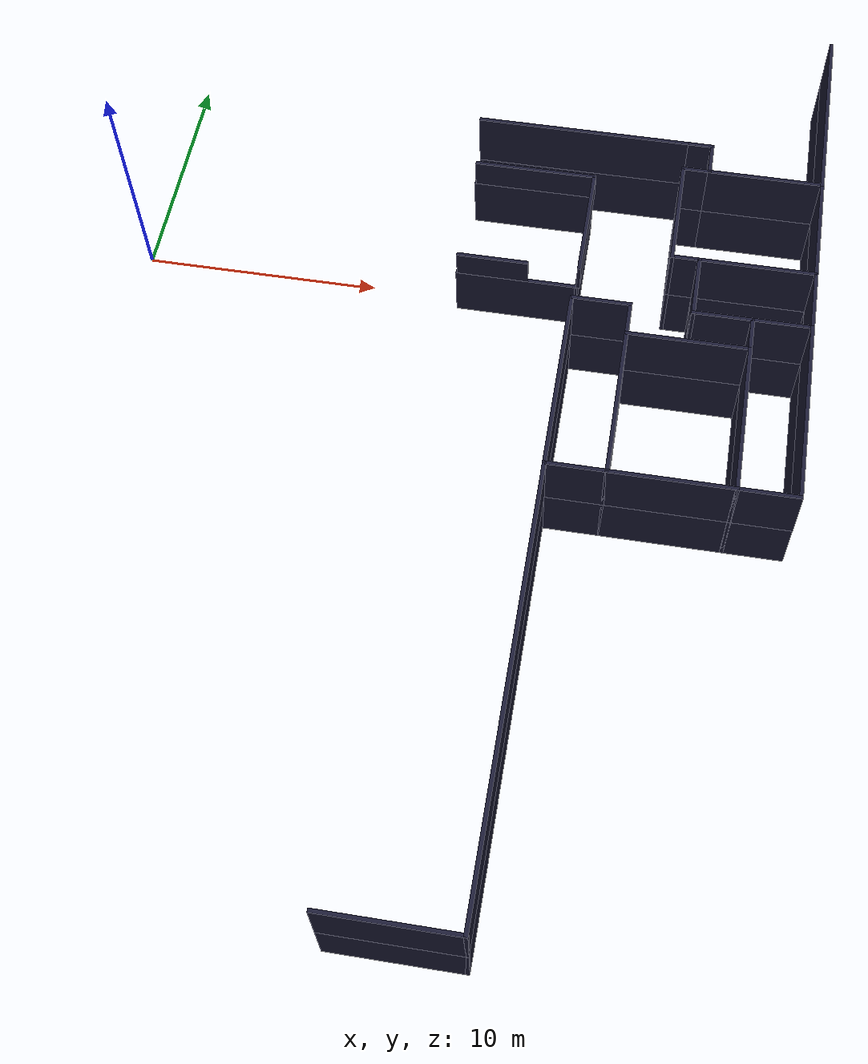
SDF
<sdf version="1.7">
 <model name="2ndo_andar_passarela_escadas_v4">
  <pose>-4.9719 -7.73678 0 0 -0 0</pose>
  <link name="Wall_101">
   <collision name="Wall_101_Collision">
    <geometry><box><size>4.75 0.15 2.5</size></box></geometry>
    <pose>0 0 1.25 0 -0 0</pose>
   </collision>
   <visual name="Wall_101_Visual">
    <pose>0 0 1.25 0 -0 0</pose>
    <geometry><box><size>4.75 0.15 2.5</size></box></geometry>
    <material>
     <script><uri>file://media/materials/scripts/gazebo.material</uri><name>Gazebo/Grey</name></script>
     <ambient>0.1 0.1 0.1 1</ambient>
     <diffuse>0.1 0.1 0.2 1</diffuse>
     <specular>0 0 0 0</specular>
     <emissive>0 0 0 1</emissive>
    </material>
    <meta><layer>0</layer></meta>
   </visual>
   <pose>33.3749 9.84978 0 0 -0 1.5708</pose>
  </link>
  <link name="Wall_103">
   <collision name="Wall_103_Collision">
    <geometry><box><size>4.85 0.15 2.5</size></box></geometry>
    <pose>0 0 1.25 0 -0 0</pose>
   </collision>
   <visual name="Wall_103_Visual">
    <pose>0 0 1.25 0 -0 0</pose>
    <geometry><box><size>4.85 0.15 2.5</size></box></geometry>
    <material>
     <script><uri>file://media/materials/scripts/gazebo.material</uri><name>Gazebo/Grey</name></script>
     <ambient>0.1 0.1 0.1 1</ambient>
     <diffuse>0.1 0.1 0.2 1</diffuse>
     <specular>0 0 0 0</specular>
     <emissive>0 0 0 1</emissive>
    </material>
    <meta><layer>0</layer></meta>
   </visual>
   <pose>31.0249 12.2998 0 0 -0 0</pose>
  </link>
  <link name="Wall_109">
   <collision name="Wall_109_Collision">
    <geometry><box><size>5.2 0.15 2.5</size></box></geometry>
    <pose>0 0 1.25 0 -0 0</pose>
   </collision>
   <visual name="Wall_109_Visual">
    <pose>0 0 1.25 0 -0 0</pose>
    <geometry><box><size>5.2 0.15 2.5</size></box></geometry>
    <material>
     <script><uri>file://media/materials/scripts/gazebo.material</uri><name>Gazebo/Grey</name></script>
     <ambient>0.1 0.1 0.1 1</ambient>
     <diffuse>0.1 0.1 0.2 1</diffuse>
     <specular>0 0 0 0</specular>
     <emissive>0 0 0 1</emissive>
    </material>
    <meta><layer>0</layer></meta>
   </visual>
   <pose>21.3001 7.35 0 0 -0 0</pose>
  </link>
  <link name="Wall_111">
   <collision name="Wall_111_Collision">
    <geometry><box><size>5.1 0.15 2.5</size></box></geometry>
    <pose>0 0 1.25 0 -0 0</pose>
   </collision>
   <visual name="Wall_111_Visual">
    <pose>0 0 1.25 0 -0 0</pose>
    <geometry><box><size>5.1 0.15 2.5</size></box></geometry>
    <material>
     <script><uri>file://media/materials/scripts/gazebo.material</uri><name>Gazebo/Grey</name></script>
     <ambient>0.1 0.1 0.1 1</ambient>
     <diffuse>0.1 0.1 0.2 1</diffuse>
     <specular>0 0 0 0</specular>
     <emissive>0 0 0 1</emissive>
    </material>
    <meta><layer>0</layer></meta>
   </visual>
   <pose>23.8251 9.825 0 0 -0 1.5708</pose>
  </link>
  <link name="Wall_113">
   <collision name="Wall_113_Collision">
    <geometry><box><size>5.2002 0.15 2.5</size></box></geometry>
    <pose>0 0 1.25 0 -0 0</pose>
   </collision>
   <visual name="Wall_113_Visual">
    <pose>0 0 1.25 0 -0 0</pose>
    <geometry><box><size>5.2002 0.15 2.5</size></box></geometry>
    <material>
     <script><uri>file://media/materials/scripts/gazebo.material</uri><name>Gazebo/Grey</name></script>
     <ambient>0.1 0.1 0.1 1</ambient>
     <diffuse>0.1 0.1 0.2 1</diffuse>
     <specular>0 0 0 0</specular>
     <emissive>0 0 0 1</emissive>
    </material>
    <meta><layer>0</layer></meta>
   </visual>
   <pose>21.3 12.2999 0 0 -0 -3.14155</pose>
  </link>
  <link name="Wall_152">
   <collision name="Wall_152_Collision">
    <geometry><box><size>8.25 0.15 2.5</size></box></geometry>
    <pose>0 0 1.25 0 -0 0</pose>
   </collision>
   <visual name="Wall_152_Visual">
    <pose>0 0 1.25 0 -0 0</pose>
    <geometry><box><size>8.25 0.15 2.5</size></box></geometry>
    <material>
     <script><uri>file://media/materials/scripts/gazebo.material</uri><name>Gazebo/Grey</name></script>
     <ambient>0.1 0.1 0.1 1</ambient>
     <diffuse>0.1 0.1 0.2 1</diffuse>
     <specular>0 0 0 0</specular>
     <emissive>0 0 0 1</emissive>
    </material>
    <meta><layer>0</layer></meta>
   </visual>
   <pose>33.3749 16.3498 0 0 -0 1.5708</pose>
  </link>
  <link name="Wall_156">
   <collision name="Wall_156_Collision">
    <geometry><box><size>17.75 0.15 2.5</size></box></geometry>
    <pose>0 0 1.25 0 -0 0</pose>
   </collision>
   <visual name="Wall_156_Visual">
    <pose>0 0 1.25 0 -0 0</pose>
    <geometry><box><size>17.75 0.15 2.5</size></box></geometry>
    <material>
     <script><uri>file://media/materials/scripts/gazebo.material</uri><name>Gazebo/Grey</name></script>
     <ambient>0.1 0.1 0.1 1</ambient>
     <diffuse>0.1 0.1 0.2 1</diffuse>
     <specular>0 0 0 0</specular>
     <emissive>0 0 0 1</emissive>
    </material>
    <meta><layer>0</layer></meta>
   </visual>
   <pose>23.8251 -11.6 0 0 -0 -1.5708</pose>
  </link>
  <link name="Wall_159">
   <collision name="Wall_159_Collision">
    <geometry><box><size>5.2 0.15 2.5</size></box></geometry>
    <pose>0 0 1.25 0 -0 0</pose>
   </collision>
   <visual name="Wall_159_Visual">
    <pose>0 0 1.25 0 -0 0</pose>
    <geometry><box><size>5.2 0.15 2.5</size></box></geometry>
    <material>
     <script><uri>file://media/materials/scripts/gazebo.material</uri><name>Gazebo/Grey</name></script>
     <ambient>0.1 0.1 0.1 1</ambient>
     <diffuse>0.1 0.1 0.2 1</diffuse>
     <specular>0 0 0 0</specular>
     <emissive>0 0 0 1</emissive>
    </material>
    <meta><layer>0</layer></meta>
   </visual>
   <pose>21.3001 -20.4 0 0 -0 0</pose>
  </link>
  <link name="Wall_16">
   <collision name="Wall_16_Collision">
    <geometry><box><size>7.9 0.15 2.5</size></box></geometry>
    <pose>0 0 1.25 0 -0 0</pose>
   </collision>
   <visual name="Wall_16_Visual">
    <pose>0 0 1.25 0 -0 0</pose>
    <geometry><box><size>7.9 0.15 2.5</size></box></geometry>
    <material>
     <script><uri>file://media/materials/scripts/gazebo.material</uri><name>Gazebo/Grey</name></script>
     <ambient>0.1 0.1 0.1 1</ambient>
     <diffuse>0.1 0.1 0.2 1</diffuse>
     <specular>0 0 0 0</specular>
     <emissive>0 0 0 1</emissive>
    </material>
    <meta><layer>0</layer></meta>
   </visual>
   <pose>23.8251 1.075 0 0 -0 1.5708</pose>
  </link>
  <link name="Wall_19">
   <collision name="Wall_19_Collision">
    <geometry><box><size>2.5 0.15 2.5</size></box></geometry>
    <pose>0 0 1.25 0 -0 0</pose>
   </collision>
   <visual name="Wall_19_Visual">
    <pose>0 0 1.25 0 -0 0</pose>
    <geometry><box><size>2.5 0.15 2.5</size></box></geometry>
    <material>
     <script><uri>file://media/materials/scripts/gazebo.material</uri><name>Gazebo/Grey</name></script>
     <ambient>0.1 0.1 0.1 1</ambient>
     <diffuse>0.1 0.1 0.2 1</diffuse>
     <specular>0 0 0 0</specular>
     <emissive>0 0 0 1</emissive>
    </material>
    <meta><layer>0</layer></meta>
   </visual>
   <pose>25.0001 4.95 0 0 -0 0</pose>
  </link>
  <link name="Wall_220">
   <collision name="Wall_220_Collision">
    <geometry><box><size>7.9 0.15 2.5</size></box></geometry>
    <pose>0 0 1.25 0 -0 0</pose>
   </collision>
   <visual name="Wall_220_Visual">
    <pose>0 0 1.25 0 -0 0</pose>
    <geometry><box><size>7.9 0.15 2.5</size></box></geometry>
    <material>
     <script><uri>file://media/materials/scripts/gazebo.material</uri><name>Gazebo/Grey</name></script>
     <ambient>0.1 0.1 0.1 1</ambient>
     <diffuse>0.1 0.1 0.2 1</diffuse>
     <specular>0 0 0 0</specular>
     <emissive>0 0 0 1</emissive>
    </material>
    <meta><layer>1</layer></meta>
   </visual>
   <pose>23.8251 1.075 2.5 0 -0 1.5708</pose>
  </link>
  <link name="Wall_221">
   <collision name="Wall_221_Collision">
    <geometry><box><size>2.5 0.15 2.5</size></box></geometry>
    <pose>0 0 1.25 0 -0 0</pose>
   </collision>
   <visual name="Wall_221_Visual">
    <pose>0 0 1.25 0 -0 0</pose>
    <geometry><box><size>2.5 0.15 2.5</size></box></geometry>
    <material>
     <script><uri>file://media/materials/scripts/gazebo.material</uri><name>Gazebo/Grey</name></script>
     <ambient>0.1 0.1 0.1 1</ambient>
     <diffuse>0.1 0.1 0.2 1</diffuse>
     <specular>0 0 0 0</specular>
     <emissive>0 0 0 1</emissive>
    </material>
    <meta><layer>1</layer></meta>
   </visual>
   <pose>25.0001 4.95 2.5 0 -0 0</pose>
  </link>
  <link name="Wall_222">
   <collision name="Wall_222_Collision">
    <geometry><box><size>2.5 0.15 2.5</size></box></geometry>
    <pose>0 0 1.25 0 -0 0</pose>
   </collision>
   <visual name="Wall_222_Visual">
    <pose>0 0 1.25 0 -0 0</pose>
    <geometry><box><size>2.5 0.15 2.5</size></box></geometry>
    <material>
     <script><uri>file://media/materials/scripts/gazebo.material</uri><name>Gazebo/Grey</name></script>
     <ambient>0.1 0.1 0.1 1</ambient>
     <diffuse>0.1 0.1 0.2 1</diffuse>
     <specular>0 0 0 0</specular>
     <emissive>0 0 0 1</emissive>
    </material>
    <meta><layer>1</layer></meta>
   </visual>
   <pose>25.0001 -2.8 2.5 0 -0 0</pose>
  </link>
  <link name="Wall_223">
   <collision name="Wall_223_Collision">
    <geometry><box><size>4.9998 0.15 2.5</size></box></geometry>
    <pose>0 0 1.25 0 -0 0</pose>
   </collision>
   <visual name="Wall_223_Visual">
    <pose>0 0 1.25 0 -0 0</pose>
    <geometry><box><size>4.9998 0.15 2.5</size></box></geometry>
    <material>
     <script><uri>file://media/materials/scripts/gazebo.material</uri><name>Gazebo/Grey</name></script>
     <ambient>0.1 0.1 0.1 1</ambient>
     <diffuse>0.1 0.1 0.2 1</diffuse>
     <specular>0 0 0 0</specular>
     <emissive>0 0 0 1</emissive>
    </material>
    <meta><layer>1</layer></meta>
   </visual>
   <pose>28.6 -2.80011 2.5 0 -0 -4.5e-05</pose>
  </link>
  <link name="Wall_224">
   <collision name="Wall_224_Collision">
    <geometry><box><size>2.5 0.15 2.5</size></box></geometry>
    <pose>0 0 1.25 0 -0 0</pose>
   </collision>
   <visual name="Wall_224_Visual">
    <pose>0 0 1.25 0 -0 0</pose>
    <geometry><box><size>2.5 0.15 2.5</size></box></geometry>
    <material>
     <script><uri>file://media/materials/scripts/gazebo.material</uri><name>Gazebo/Grey</name></script>
     <ambient>0.1 0.1 0.1 1</ambient>
     <diffuse>0.1 0.1 0.2 1</diffuse>
     <specular>0 0 0 0</specular>
     <emissive>0 0 0 1</emissive>
    </material>
    <meta><layer>1</layer></meta>
   </visual>
   <pose>32.1999 -2.80022 2.5 0 -0 0</pose>
  </link>
  <link name="Wall_225">
   <collision name="Wall_225_Collision">
    <geometry><box><size>7.9 0.15 2.5</size></box></geometry>
    <pose>0 0 1.25 0 -0 0</pose>
   </collision>
   <visual name="Wall_225_Visual">
    <pose>0 0 1.25 0 -0 0</pose>
    <geometry><box><size>7.9 0.15 2.5</size></box></geometry>
    <material>
     <script><uri>file://media/materials/scripts/gazebo.material</uri><name>Gazebo/Grey</name></script>
     <ambient>0.1 0.1 0.1 1</ambient>
     <diffuse>0.1 0.1 0.2 1</diffuse>
     <specular>0 0 0 0</specular>
     <emissive>0 0 0 1</emissive>
    </material>
    <meta><layer>1</layer></meta>
   </visual>
   <pose>33.3749 1.07478 2.5 0 -0 1.5708</pose>
  </link>
  <link name="Wall_226">
   <collision name="Wall_226_Collision">
    <geometry><box><size>2.5 0.15 2.5</size></box></geometry>
    <pose>0 0 1.25 0 -0 0</pose>
   </collision>
   <visual name="Wall_226_Visual">
    <pose>0 0 1.25 0 -0 0</pose>
    <geometry><box><size>2.5 0.15 2.5</size></box></geometry>
    <material>
     <script><uri>file://media/materials/scripts/gazebo.material</uri><name>Gazebo/Grey</name></script>
     <ambient>0.1 0.1 0.1 1</ambient>
     <diffuse>0.1 0.1 0.2 1</diffuse>
     <specular>0 0 0 0</specular>
     <emissive>0 0 0 1</emissive>
    </material>
    <meta><layer>1</layer></meta>
   </visual>
   <pose>32.1999 4.94978 2.5 0 -0 3.14159</pose>
  </link>
  <link name="Wall_227">
   <collision name="Wall_227_Collision">
    <geometry><box><size>7.75 0.15 2.5</size></box></geometry>
    <pose>0 0 1.25 0 -0 0</pose>
   </collision>
   <visual name="Wall_227_Visual">
    <pose>0 0 1.25 0 -0 0</pose>
    <geometry><box><size>7.75 0.15 2.5</size></box></geometry>
    <material>
     <script><uri>file://media/materials/scripts/gazebo.material</uri><name>Gazebo/Grey</name></script>
     <ambient>0.1 0.1 0.1 1</ambient>
     <diffuse>0.1 0.1 0.2 1</diffuse>
     <specular>0 0 0 0</specular>
     <emissive>0 0 0 1</emissive>
    </material>
    <meta><layer>1</layer></meta>
   </visual>
   <pose>26.1751 1 2.5 0 -0 1.5708</pose>
  </link>
  <link name="Wall_228">
   <collision name="Wall_228_Collision">
    <geometry><box><size>1.55 0.15 2.5</size></box></geometry>
    <pose>0 0 1.25 0 -0 0</pose>
   </collision>
   <visual name="Wall_228_Visual">
    <pose>0 0 1.25 0 -0 0</pose>
    <geometry><box><size>1.55 0.15 2.5</size></box></geometry>
    <material>
     <script><uri>file://media/materials/scripts/gazebo.material</uri><name>Gazebo/Grey</name></script>
     <ambient>0.1 0.1 0.1 1</ambient>
     <diffuse>0.1 0.1 0.2 1</diffuse>
     <specular>0 0 0 0</specular>
     <emissive>0 0 0 1</emissive>
    </material>
    <meta><layer>1</layer></meta>
   </visual>
   <pose>31.0249 4.24978 2.5 0 -0 -1.5708</pose>
  </link>
  <link name="Wall_229">
   <collision name="Wall_229_Collision">
    <geometry><box><size>5 0.15 2.5</size></box></geometry>
    <pose>0 0 1.25 0 -0 0</pose>
   </collision>
   <visual name="Wall_229_Visual">
    <pose>0 0 1.25 0 -0 0</pose>
    <geometry><box><size>5 0.15 2.5</size></box></geometry>
    <material>
     <script><uri>file://media/materials/scripts/gazebo.material</uri><name>Gazebo/Grey</name></script>
     <ambient>0.1 0.1 0.1 1</ambient>
     <diffuse>0.1 0.1 0.2 1</diffuse>
     <specular>0 0 0 0</specular>
     <emissive>0 0 0 1</emissive>
    </material>
    <meta><layer>1</layer></meta>
   </visual>
   <pose>28.5999 3.54978 2.5 0 -0 3.14159</pose>
  </link>
  <link name="Wall_23">
   <collision name="Wall_23_Collision">
    <geometry><box><size>2.5 0.15 2.5</size></box></geometry>
    <pose>0 0 1.25 0 -0 0</pose>
   </collision>
   <visual name="Wall_23_Visual">
    <pose>0 0 1.25 0 -0 0</pose>
    <geometry><box><size>2.5 0.15 2.5</size></box></geometry>
    <material>
     <script><uri>file://media/materials/scripts/gazebo.material</uri><name>Gazebo/Grey</name></script>
     <ambient>0.1 0.1 0.1 1</ambient>
     <diffuse>0.1 0.1 0.2 1</diffuse>
     <specular>0 0 0 0</specular>
     <emissive>0 0 0 1</emissive>
    </material>
    <meta><layer>0</layer></meta>
   </visual>
   <pose>25.0001 -2.8 0 0 -0 0</pose>
  </link>
  <link name="Wall_230">
   <collision name="Wall_230_Collision">
    <geometry><box><size>6.5 0.15 2.5</size></box></geometry>
    <pose>0 0 1.25 0 -0 0</pose>
   </collision>
   <visual name="Wall_230_Visual">
    <pose>0 0 1.25 0 -0 0</pose>
    <geometry><box><size>6.5 0.15 2.5</size></box></geometry>
    <material>
     <script><uri>file://media/materials/scripts/gazebo.material</uri><name>Gazebo/Grey</name></script>
     <ambient>0.1 0.1 0.1 1</ambient>
     <diffuse>0.1 0.1 0.2 1</diffuse>
     <specular>0 0 0 0</specular>
     <emissive>0 0 0 1</emissive>
    </material>
    <meta><layer>1</layer></meta>
   </visual>
   <pose>31.0249 0.374779 2.5 0 -0 -1.5708</pose>
  </link>
  <link name="Wall_231">
   <collision name="Wall_231_Collision">
    <geometry><box><size>2.5 0.15 2.5</size></box></geometry>
    <pose>0 0 1.25 0 -0 0</pose>
   </collision>
   <visual name="Wall_231_Visual">
    <pose>0 0 1.25 0 -0 0</pose>
    <geometry><box><size>2.5 0.15 2.5</size></box></geometry>
    <material>
     <script><uri>file://media/materials/scripts/gazebo.material</uri><name>Gazebo/Grey</name></script>
     <ambient>0.1 0.1 0.1 1</ambient>
     <diffuse>0.1 0.1 0.2 1</diffuse>
     <specular>0 0 0 0</specular>
     <emissive>0 0 0 1</emissive>
    </material>
    <meta><layer>1</layer></meta>
   </visual>
   <pose>29.8499 4.94978 2.5 0 -0 3.14159</pose>
  </link>
  <link name="Wall_232">
   <collision name="Wall_232_Collision">
    <geometry><box><size>2.8 0.15 2.5</size></box></geometry>
    <pose>0 0 1.25 0 -0 0</pose>
   </collision>
   <visual name="Wall_232_Visual">
    <pose>0 0 1.25 0 -0 0</pose>
    <geometry><box><size>2.8 0.15 2.5</size></box></geometry>
    <material>
     <script><uri>file://media/materials/scripts/gazebo.material</uri><name>Gazebo/Grey</name></script>
     <ambient>0.1 0.1 0.1 1</ambient>
     <diffuse>0.1 0.1 0.2 1</diffuse>
     <specular>0 0 0 0</specular>
     <emissive>0 0 0 1</emissive>
    </material>
    <meta><layer>1</layer></meta>
   </visual>
   <pose>28.6749 6.27478 2.5 0 -0 1.5708</pose>
  </link>
  <link name="Wall_233">
   <collision name="Wall_233_Collision">
    <geometry><box><size>4.8 0.15 2.5</size></box></geometry>
    <pose>0 0 1.25 0 -0 0</pose>
   </collision>
   <visual name="Wall_233_Visual">
    <pose>0 0 1.25 0 -0 0</pose>
    <geometry><box><size>4.8 0.15 2.5</size></box></geometry>
    <material>
     <script><uri>file://media/materials/scripts/gazebo.material</uri><name>Gazebo/Grey</name></script>
     <ambient>0.1 0.1 0.1 1</ambient>
     <diffuse>0.1 0.1 0.2 1</diffuse>
     <specular>0 0 0 0</specular>
     <emissive>0 0 0 1</emissive>
    </material>
    <meta><layer>1</layer></meta>
   </visual>
   <pose>30.9999 7.59978 2.5 0 -0 0</pose>
  </link>
  <link name="Wall_234">
   <collision name="Wall_234_Collision">
    <geometry><box><size>2.75 0.15 2.5</size></box></geometry>
    <pose>0 0 1.25 0 -0 0</pose>
   </collision>
   <visual name="Wall_234_Visual">
    <pose>0 0 1.25 0 -0 0</pose>
    <geometry><box><size>2.75 0.15 2.5</size></box></geometry>
    <material>
     <script><uri>file://media/materials/scripts/gazebo.material</uri><name>Gazebo/Grey</name></script>
     <ambient>0.1 0.1 0.1 1</ambient>
     <diffuse>0.1 0.1 0.2 1</diffuse>
     <specular>0 0 0 0</specular>
     <emissive>0 0 0 1</emissive>
    </material>
    <meta><layer>1</layer></meta>
   </visual>
   <pose>33.3749 6.24978 2.5 0 -0 1.5708</pose>
  </link>
  <link name="Wall_235">
   <collision name="Wall_235_Collision">
    <geometry><box><size>1.25 0.15 2.5</size></box></geometry>
    <pose>0 0 1.25 0 -0 0</pose>
   </collision>
   <visual name="Wall_235_Visual">
    <pose>0 0 1.25 0 -0 0</pose>
    <geometry><box><size>1.25 0.15 2.5</size></box></geometry>
    <material>
     <script><uri>file://media/materials/scripts/gazebo.material</uri><name>Gazebo/Grey</name></script>
     <ambient>0.1 0.1 0.1 1</ambient>
     <diffuse>0.1 0.1 0.2 1</diffuse>
     <specular>0 0 0 0</specular>
     <emissive>0 0 0 1</emissive>
    </material>
    <meta><layer>1</layer></meta>
   </visual>
   <pose>28.1249 7.59978 2.5 0 -0 3.14159</pose>
  </link>
  <link name="Wall_236">
   <collision name="Wall_236_Collision">
    <geometry><box><size>4.75 0.15 2.5</size></box></geometry>
    <pose>0 0 1.25 0 -0 0</pose>
   </collision>
   <visual name="Wall_236_Visual">
    <pose>0 0 1.25 0 -0 0</pose>
    <geometry><box><size>4.75 0.15 2.5</size></box></geometry>
    <material>
     <script><uri>file://media/materials/scripts/gazebo.material</uri><name>Gazebo/Grey</name></script>
     <ambient>0.1 0.1 0.1 1</ambient>
     <diffuse>0.1 0.1 0.2 1</diffuse>
     <specular>0 0 0 0</specular>
     <emissive>0 0 0 1</emissive>
    </material>
    <meta><layer>1</layer></meta>
   </visual>
   <pose>27.5749 9.89978 2.5 0 -0 1.5708</pose>
  </link>
  <link name="Wall_238">
   <collision name="Wall_238_Collision">
    <geometry><box><size>8.95 0.15 2.5</size></box></geometry>
    <pose>0 0 1.25 0 -0 0</pose>
   </collision>
   <visual name="Wall_238_Visual">
    <pose>0 0 1.25 0 -0 0</pose>
    <geometry><box><size>8.95 0.15 2.5</size></box></geometry>
    <material>
     <script><uri>file://media/materials/scripts/gazebo.material</uri><name>Gazebo/Grey</name></script>
     <ambient>0.1 0.1 0.1 1</ambient>
     <diffuse>0.1 0.1 0.2 1</diffuse>
     <specular>0 0 0 0</specular>
     <emissive>0 0 0 1</emissive>
    </material>
    <meta><layer>1</layer></meta>
   </visual>
   <pose>23.1749 13.6998 2.5 0 -0 0</pose>
  </link>
  <link name="Wall_239">
   <collision name="Wall_239_Collision">
    <geometry><box><size>1.25 0.15 2.5</size></box></geometry>
    <pose>0 0 1.25 0 -0 0</pose>
   </collision>
   <visual name="Wall_239_Visual">
    <pose>0 0 1.25 0 -0 0</pose>
    <geometry><box><size>1.25 0.15 2.5</size></box></geometry>
    <material>
     <script><uri>file://media/materials/scripts/gazebo.material</uri><name>Gazebo/Grey</name></script>
     <ambient>0.1 0.1 0.1 1</ambient>
     <diffuse>0.1 0.1 0.2 1</diffuse>
     <specular>0 0 0 0</specular>
     <emissive>0 0 0 1</emissive>
    </material>
    <meta><layer>1</layer></meta>
   </visual>
   <pose>28.1249 12.2998 2.5 0 -0 0</pose>
  </link>
  <link name="Wall_240">
   <collision name="Wall_240_Collision">
    <geometry><box><size>1.55 0.15 2.5</size></box></geometry>
    <pose>0 0 1.25 0 -0 0</pose>
   </collision>
   <visual name="Wall_240_Visual">
    <pose>0 0 1.25 0 -0 0</pose>
    <geometry><box><size>1.55 0.15 2.5</size></box></geometry>
    <material>
     <script><uri>file://media/materials/scripts/gazebo.material</uri><name>Gazebo/Grey</name></script>
     <ambient>0.1 0.1 0.1 1</ambient>
     <diffuse>0.1 0.1 0.2 1</diffuse>
     <specular>0 0 0 0</specular>
     <emissive>0 0 0 1</emissive>
    </material>
    <meta><layer>1</layer></meta>
   </visual>
   <pose>28.6749 12.9998 2.5 0 -0 1.5708</pose>
  </link>
  <link name="Wall_241">
   <collision name="Wall_241_Collision">
    <geometry><box><size>1.25 0.15 2.5</size></box></geometry>
    <pose>0 0 1.25 0 -0 0</pose>
   </collision>
   <visual name="Wall_241_Visual">
    <pose>0 0 1.25 0 -0 0</pose>
    <geometry><box><size>1.25 0.15 2.5</size></box></geometry>
    <material>
     <script><uri>file://media/materials/scripts/gazebo.material</uri><name>Gazebo/Grey</name></script>
     <ambient>0.1 0.1 0.1 1</ambient>
     <diffuse>0.1 0.1 0.2 1</diffuse>
     <specular>0 0 0 0</specular>
     <emissive>0 0 0 1</emissive>
    </material>
    <meta><layer>1</layer></meta>
   </visual>
   <pose>28.1249 13.6998 2.5 0 -0 0</pose>
  </link>
  <link name="Wall_242">
   <collision name="Wall_242_Collision">
    <geometry><box><size>4.75 0.15 2.5</size></box></geometry>
    <pose>0 0 1.25 0 -0 0</pose>
   </collision>
   <visual name="Wall_242_Visual">
    <pose>0 0 1.25 0 -0 0</pose>
    <geometry><box><size>4.75 0.15 2.5</size></box></geometry>
    <material>
     <script><uri>file://media/materials/scripts/gazebo.material</uri><name>Gazebo/Grey</name></script>
     <ambient>0.1 0.1 0.1 1</ambient>
     <diffuse>0.1 0.1 0.2 1</diffuse>
     <specular>0 0 0 0</specular>
     <emissive>0 0 0 1</emissive>
    </material>
    <meta><layer>1</layer></meta>
   </visual>
   <pose>33.3749 9.84978 2.5 0 -0 1.5708</pose>
  </link>
  <link name="Wall_243">
   <collision name="Wall_243_Collision">
    <geometry><box><size>4.85 0.15 2.5</size></box></geometry>
    <pose>0 0 1.25 0 -0 0</pose>
   </collision>
   <visual name="Wall_243_Visual">
    <pose>0 0 1.25 0 -0 0</pose>
    <geometry><box><size>4.85 0.15 2.5</size></box></geometry>
    <material>
     <script><uri>file://media/materials/scripts/gazebo.material</uri><name>Gazebo/Grey</name></script>
     <ambient>0.1 0.1 0.1 1</ambient>
     <diffuse>0.1 0.1 0.2 1</diffuse>
     <specular>0 0 0 0</specular>
     <emissive>0 0 0 1</emissive>
    </material>
    <meta><layer>1</layer></meta>
   </visual>
   <pose>31.0249 12.2998 2.5 0 -0 0</pose>
  </link>
  <link name="Wall_25">
   <collision name="Wall_25_Collision">
    <geometry><box><size>5 0.15 2.5</size></box></geometry>
    <pose>0 0 1.25 0 -0 0</pose>
   </collision>
   <visual name="Wall_25_Visual">
    <pose>0 0 1.25 0 -0 0</pose>
    <geometry><box><size>5 0.15 2.5</size></box></geometry>
    <material>
     <script><uri>file://media/materials/scripts/gazebo.material</uri><name>Gazebo/Grey</name></script>
     <ambient>0.1 0.1 0.1 1</ambient>
     <diffuse>0.1 0.1 0.2 1</diffuse>
     <specular>0 0 0 0</specular>
     <emissive>0 0 0 1</emissive>
    </material>
    <meta><layer>0</layer></meta>
   </visual>
   <pose>28.6 -2.80011 0 0 -0 -4.5e-05</pose>
  </link>
  <link name="Wall_260">
   <collision name="Wall_260_Collision">
    <geometry><box><size>8.25 0.15 2.5</size></box></geometry>
    <pose>0 0 1.25 0 -0 0</pose>
   </collision>
   <visual name="Wall_260_Visual">
    <pose>0 0 1.25 0 -0 0</pose>
    <geometry><box><size>8.25 0.15 2.5</size></box></geometry>
    <material>
     <script><uri>file://media/materials/scripts/gazebo.material</uri><name>Gazebo/Grey</name></script>
     <ambient>0.1 0.1 0.1 1</ambient>
     <diffuse>0.1 0.1 0.2 1</diffuse>
     <specular>0 0 0 0</specular>
     <emissive>0 0 0 1</emissive>
    </material>
    <meta><layer>1</layer></meta>
   </visual>
   <pose>33.3749 16.3498 2.5 0 -0 1.5708</pose>
  </link>
  <link name="Wall_262">
   <collision name="Wall_262_Collision">
    <geometry><box><size>17.75 0.15 2.5</size></box></geometry>
    <pose>0 0 1.25 0 -0 0</pose>
   </collision>
   <visual name="Wall_262_Visual">
    <pose>0 0 1.25 0 -0 0</pose>
    <geometry><box><size>17.75 0.15 2.5</size></box></geometry>
    <material>
     <script><uri>file://media/materials/scripts/gazebo.material</uri><name>Gazebo/Grey</name></script>
     <ambient>0.1 0.1 0.1 1</ambient>
     <diffuse>0.1 0.1 0.2 1</diffuse>
     <specular>0 0 0 0</specular>
     <emissive>0 0 0 1</emissive>
    </material>
    <meta><layer>1</layer></meta>
   </visual>
   <pose>23.8251 -11.6 2.5 0 -0 -1.5708</pose>
  </link>
  <link name="Wall_263">
   <collision name="Wall_263_Collision">
    <geometry><box><size>5.2 0.15 2.5</size></box></geometry>
    <pose>0 0 1.25 0 -0 0</pose>
   </collision>
   <visual name="Wall_263_Visual">
    <pose>0 0 1.25 0 -0 0</pose>
    <geometry><box><size>5.2 0.15 2.5</size></box></geometry>
    <material>
     <script><uri>file://media/materials/scripts/gazebo.material</uri><name>Gazebo/Grey</name></script>
     <ambient>0.1 0.1 0.1 1</ambient>
     <diffuse>0.1 0.1 0.2 1</diffuse>
     <specular>0 0 0 0</specular>
     <emissive>0 0 0 1</emissive>
    </material>
    <meta><layer>1</layer></meta>
   </visual>
   <pose>21.3001 -20.4 2.5 0 -0 0</pose>
  </link>
  <link name="Wall_267">
   <collision name="Wall_267_Collision">
    <geometry><box><size>3 0.15 1.2</size></box></geometry>
    <pose>0 0 0.6 0 -0 0</pose>
   </collision>
   <visual name="Wall_267_Visual">
    <pose>0 0 0.6 0 -0 0</pose>
    <geometry><box><size>3 0.15 1.2</size></box></geometry>
    <material>
     <script><uri>file://media/materials/scripts/gazebo.material</uri><name>Gazebo/Grey</name></script>
     <ambient>0.1 0.1 0.1 1</ambient>
     <diffuse>0.1 0.1 0.2 1</diffuse>
     <specular>0 0 0 0</specular>
     <emissive>0 0 0 1</emissive>
    </material>
    <meta><layer>1</layer></meta>
   </visual>
   <pose>20.2499 7.34978 2.5 0 -0 0</pose>
  </link>
  <link name="Wall_269">
   <collision name="Wall_269_Collision">
    <geometry><box><size>5.2 0.15 1.3</size></box></geometry>
    <pose>0 0 0.65 0 -0 0</pose>
   </collision>
   <visual name="Wall_269_Visual">
    <pose>0 0 0.65 0 -0 0</pose>
    <geometry><box><size>5.2 0.15 1.3</size></box></geometry>
    <material>
     <script><uri>file://media/materials/scripts/gazebo.material</uri><name>Gazebo/Grey</name></script>
     <ambient>0.1 0.1 0.1 1</ambient>
     <diffuse>0.1 0.1 0.2 1</diffuse>
     <specular>0 0 0 0</specular>
     <emissive>0 0 0 1</emissive>
    </material>
    <meta><layer>1</layer></meta>
   </visual>
   <pose>21.3499 12.2998 2.5 0 -0 0</pose>
  </link>
  <link name="Wall_27">
   <collision name="Wall_27_Collision">
    <geometry><box><size>2.5 0.15 2.5</size></box></geometry>
    <pose>0 0 1.25 0 -0 0</pose>
   </collision>
   <visual name="Wall_27_Visual">
    <pose>0 0 1.25 0 -0 0</pose>
    <geometry><box><size>2.5 0.15 2.5</size></box></geometry>
    <material>
     <script><uri>file://media/materials/scripts/gazebo.material</uri><name>Gazebo/Grey</name></script>
     <ambient>0.1 0.1 0.1 1</ambient>
     <diffuse>0.1 0.1 0.2 1</diffuse>
     <specular>0 0 0 0</specular>
     <emissive>0 0 0 1</emissive>
    </material>
    <meta><layer>0</layer></meta>
   </visual>
   <pose>32.1999 -2.80022 0 0 -0 0</pose>
  </link>
  <link name="Wall_277">
   <collision name="Wall_277_Collision">
    <geometry><box><size>5.1 0.15 1.3</size></box></geometry>
    <pose>0 0 0.65 0 -0 0</pose>
   </collision>
   <visual name="Wall_277_Visual">
    <pose>0 0 0.65 0 -0 0</pose>
    <geometry><box><size>5.1 0.15 1.3</size></box></geometry>
    <material>
     <script><uri>file://media/materials/scripts/gazebo.material</uri><name>Gazebo/Grey</name></script>
     <ambient>0.1 0.1 0.1 1</ambient>
     <diffuse>0.1 0.1 0.2 1</diffuse>
     <specular>0 0 0 0</specular>
     <emissive>0 0 0 1</emissive>
    </material>
    <meta><layer>1</layer></meta>
   </visual>
   <pose>23.8749 9.82478 2.5 0 -0 -1.5708</pose>
  </link>
  <link name="Wall_30">
   <collision name="Wall_30_Collision">
    <geometry><box><size>7.9 0.15 2.5</size></box></geometry>
    <pose>0 0 1.25 0 -0 0</pose>
   </collision>
   <visual name="Wall_30_Visual">
    <pose>0 0 1.25 0 -0 0</pose>
    <geometry><box><size>7.9 0.15 2.5</size></box></geometry>
    <material>
     <script><uri>file://media/materials/scripts/gazebo.material</uri><name>Gazebo/Grey</name></script>
     <ambient>0.1 0.1 0.1 1</ambient>
     <diffuse>0.1 0.1 0.2 1</diffuse>
     <specular>0 0 0 0</specular>
     <emissive>0 0 0 1</emissive>
    </material>
    <meta><layer>0</layer></meta>
   </visual>
   <pose>33.3749 1.07478 0 0 -0 1.5708</pose>
  </link>
  <link name="Wall_32">
   <collision name="Wall_32_Collision">
    <geometry><box><size>2.5 0.15 2.5</size></box></geometry>
    <pose>0 0 1.25 0 -0 0</pose>
   </collision>
   <visual name="Wall_32_Visual">
    <pose>0 0 1.25 0 -0 0</pose>
    <geometry><box><size>2.5 0.15 2.5</size></box></geometry>
    <material>
     <script><uri>file://media/materials/scripts/gazebo.material</uri><name>Gazebo/Grey</name></script>
     <ambient>0.1 0.1 0.1 1</ambient>
     <diffuse>0.1 0.1 0.2 1</diffuse>
     <specular>0 0 0 0</specular>
     <emissive>0 0 0 1</emissive>
    </material>
    <meta><layer>0</layer></meta>
   </visual>
   <pose>32.1999 4.94978 0 0 -0 3.14159</pose>
  </link>
  <link name="Wall_34">
   <collision name="Wall_34_Collision">
    <geometry><box><size>7.75 0.15 2.5</size></box></geometry>
    <pose>0 0 1.25 0 -0 0</pose>
   </collision>
   <visual name="Wall_34_Visual">
    <pose>0 0 1.25 0 -0 0</pose>
    <geometry><box><size>7.75 0.15 2.5</size></box></geometry>
    <material>
     <script><uri>file://media/materials/scripts/gazebo.material</uri><name>Gazebo/Grey</name></script>
     <ambient>0.1 0.1 0.1 1</ambient>
     <diffuse>0.1 0.1 0.2 1</diffuse>
     <specular>0 0 0 0</specular>
     <emissive>0 0 0 1</emissive>
    </material>
    <meta><layer>0</layer></meta>
   </visual>
   <pose>26.1751 1 0 0 -0 1.5708</pose>
  </link>
  <link name="Wall_37">
   <collision name="Wall_37_Collision">
    <geometry><box><size>1.55 0.15 2.5</size></box></geometry>
    <pose>0 0 1.25 0 -0 0</pose>
   </collision>
   <visual name="Wall_37_Visual">
    <pose>0 0 1.25 0 -0 0</pose>
    <geometry><box><size>1.55 0.15 2.5</size></box></geometry>
    <material>
     <script><uri>file://media/materials/scripts/gazebo.material</uri><name>Gazebo/Grey</name></script>
     <ambient>0.1 0.1 0.1 1</ambient>
     <diffuse>0.1 0.1 0.2 1</diffuse>
     <specular>0 0 0 0</specular>
     <emissive>0 0 0 1</emissive>
    </material>
    <meta><layer>0</layer></meta>
   </visual>
   <pose>31.0249 4.24978 0 0 -0 -1.5708</pose>
  </link>
  <link name="Wall_39">
   <collision name="Wall_39_Collision">
    <geometry><box><size>5 0.15 2.5</size></box></geometry>
    <pose>0 0 1.25 0 -0 0</pose>
   </collision>
   <visual name="Wall_39_Visual">
    <pose>0 0 1.25 0 -0 0</pose>
    <geometry><box><size>5 0.15 2.5</size></box></geometry>
    <material>
     <script><uri>file://media/materials/scripts/gazebo.material</uri><name>Gazebo/Grey</name></script>
     <ambient>0.1 0.1 0.1 1</ambient>
     <diffuse>0.1 0.1 0.2 1</diffuse>
     <specular>0 0 0 0</specular>
     <emissive>0 0 0 1</emissive>
    </material>
    <meta><layer>0</layer></meta>
   </visual>
   <pose>28.5999 3.54978 0 0 -0 3.14159</pose>
  </link>
  <link name="Wall_42">
   <collision name="Wall_42_Collision">
    <geometry><box><size>6.5 0.15 2.5</size></box></geometry>
    <pose>0 0 1.25 0 -0 0</pose>
   </collision>
   <visual name="Wall_42_Visual">
    <pose>0 0 1.25 0 -0 0</pose>
    <geometry><box><size>6.5 0.15 2.5</size></box></geometry>
    <material>
     <script><uri>file://media/materials/scripts/gazebo.material</uri><name>Gazebo/Grey</name></script>
     <ambient>0.1 0.1 0.1 1</ambient>
     <diffuse>0.1 0.1 0.2 1</diffuse>
     <specular>0 0 0 0</specular>
     <emissive>0 0 0 1</emissive>
    </material>
    <meta><layer>0</layer></meta>
   </visual>
   <pose>31.0249 0.374779 0 0 -0 -1.5708</pose>
  </link>
  <link name="Wall_45">
   <collision name="Wall_45_Collision">
    <geometry><box><size>2.5 0.15 2.5</size></box></geometry>
    <pose>0 0 1.25 0 -0 0</pose>
   </collision>
   <visual name="Wall_45_Visual">
    <pose>0 0 1.25 0 -0 0</pose>
    <geometry><box><size>2.5 0.15 2.5</size></box></geometry>
    <material>
     <script><uri>file://media/materials/scripts/gazebo.material</uri><name>Gazebo/Grey</name></script>
     <ambient>0.1 0.1 0.1 1</ambient>
     <diffuse>0.1 0.1 0.2 1</diffuse>
     <specular>0 0 0 0</specular>
     <emissive>0 0 0 1</emissive>
    </material>
    <meta><layer>0</layer></meta>
   </visual>
   <pose>29.8499 4.94978 0 0 -0 3.14159</pose>
  </link>
  <link name="Wall_47">
   <collision name="Wall_47_Collision">
    <geometry><box><size>2.8 0.15 2.5</size></box></geometry>
    <pose>0 0 1.25 0 -0 0</pose>
   </collision>
   <visual name="Wall_47_Visual">
    <pose>0 0 1.25 0 -0 0</pose>
    <geometry><box><size>2.8 0.15 2.5</size></box></geometry>
    <material>
     <script><uri>file://media/materials/scripts/gazebo.material</uri><name>Gazebo/Grey</name></script>
     <ambient>0.1 0.1 0.1 1</ambient>
     <diffuse>0.1 0.1 0.2 1</diffuse>
     <specular>0 0 0 0</specular>
     <emissive>0 0 0 1</emissive>
    </material>
    <meta><layer>0</layer></meta>
   </visual>
   <pose>28.6749 6.27478 0 0 -0 1.5708</pose>
  </link>
  <link name="Wall_49">
   <collision name="Wall_49_Collision">
    <geometry><box><size>4.8 0.15 2.5</size></box></geometry>
    <pose>0 0 1.25 0 -0 0</pose>
   </collision>
   <visual name="Wall_49_Visual">
    <pose>0 0 1.25 0 -0 0</pose>
    <geometry><box><size>4.8 0.15 2.5</size></box></geometry>
    <material>
     <script><uri>file://media/materials/scripts/gazebo.material</uri><name>Gazebo/Grey</name></script>
     <ambient>0.1 0.1 0.1 1</ambient>
     <diffuse>0.1 0.1 0.2 1</diffuse>
     <specular>0 0 0 0</specular>
     <emissive>0 0 0 1</emissive>
    </material>
    <meta><layer>0</layer></meta>
   </visual>
   <pose>30.9999 7.59978 0 0 -0 0</pose>
  </link>
  <link name="Wall_51">
   <collision name="Wall_51_Collision">
    <geometry><box><size>2.75 0.15 2.5</size></box></geometry>
    <pose>0 0 1.25 0 -0 0</pose>
   </collision>
   <visual name="Wall_51_Visual">
    <pose>0 0 1.25 0 -0 0</pose>
    <geometry><box><size>2.75 0.15 2.5</size></box></geometry>
    <material>
     <script><uri>file://media/materials/scripts/gazebo.material</uri><name>Gazebo/Grey</name></script>
     <ambient>0.1 0.1 0.1 1</ambient>
     <diffuse>0.1 0.1 0.2 1</diffuse>
     <specular>0 0 0 0</specular>
     <emissive>0 0 0 1</emissive>
    </material>
    <meta><layer>0</layer></meta>
   </visual>
   <pose>33.3749 6.24978 0 0 -0 1.5708</pose>
  </link>
  <link name="Wall_55">
   <collision name="Wall_55_Collision">
    <geometry><box><size>1.25 0.15 2.5</size></box></geometry>
    <pose>0 0 1.25 0 -0 0</pose>
   </collision>
   <visual name="Wall_55_Visual">
    <pose>0 0 1.25 0 -0 0</pose>
    <geometry><box><size>1.25 0.15 2.5</size></box></geometry>
    <material>
     <script><uri>file://media/materials/scripts/gazebo.material</uri><name>Gazebo/Grey</name></script>
     <ambient>0.1 0.1 0.1 1</ambient>
     <diffuse>0.1 0.1 0.2 1</diffuse>
     <specular>0 0 0 0</specular>
     <emissive>0 0 0 1</emissive>
    </material>
    <meta><layer>0</layer></meta>
   </visual>
   <pose>28.1249 7.59978 0 0 -0 3.14159</pose>
  </link>
  <link name="Wall_78">
   <collision name="Wall_78_Collision">
    <geometry><box><size>4.75 0.15 2.5</size></box></geometry>
    <pose>0 0 1.25 0 -0 0</pose>
   </collision>
   <visual name="Wall_78_Visual">
    <pose>0 0 1.25 0 -0 0</pose>
    <geometry><box><size>4.75 0.15 2.5</size></box></geometry>
    <material>
     <script><uri>file://media/materials/scripts/gazebo.material</uri><name>Gazebo/Grey</name></script>
     <ambient>0.1 0.1 0.1 1</ambient>
     <diffuse>0.1 0.1 0.2 1</diffuse>
     <specular>0 0 0 0</specular>
     <emissive>0 0 0 1</emissive>
    </material>
    <meta><layer>0</layer></meta>
   </visual>
   <pose>27.5749 9.89978 0 0 -0 1.5708</pose>
  </link>
  <link name="Wall_88">
   <collision name="Wall_88_Collision">
    <geometry><box><size>8.95 0.15 2.5</size></box></geometry>
    <pose>0 0 1.25 0 -0 0</pose>
   </collision>
   <visual name="Wall_88_Visual">
    <pose>0 0 1.25 0 -0 0</pose>
    <geometry><box><size>8.95 0.15 2.5</size></box></geometry>
    <material>
     <script><uri>file://media/materials/scripts/gazebo.material</uri><name>Gazebo/Grey</name></script>
     <ambient>0.1 0.1 0.1 1</ambient>
     <diffuse>0.1 0.1 0.2 1</diffuse>
     <specular>0 0 0 0</specular>
     <emissive>0 0 0 1</emissive>
    </material>
    <meta><layer>0</layer></meta>
   </visual>
   <pose>23.1749 13.6998 0 0 -0 0</pose>
  </link>
  <link name="Wall_94">
   <collision name="Wall_94_Collision">
    <geometry><box><size>1.25 0.15 2.5</size></box></geometry>
    <pose>0 0 1.25 0 -0 0</pose>
   </collision>
   <visual name="Wall_94_Visual">
    <pose>0 0 1.25 0 -0 0</pose>
    <geometry><box><size>1.25 0.15 2.5</size></box></geometry>
    <material>
     <script><uri>file://media/materials/scripts/gazebo.material</uri><name>Gazebo/Grey</name></script>
     <ambient>0.1 0.1 0.1 1</ambient>
     <diffuse>0.1 0.1 0.2 1</diffuse>
     <specular>0 0 0 0</specular>
     <emissive>0 0 0 1</emissive>
    </material>
    <meta><layer>0</layer></meta>
   </visual>
   <pose>28.1249 12.2998 0 0 -0 0</pose>
  </link>
  <link name="Wall_96">
   <collision name="Wall_96_Collision">
    <geometry><box><size>1.55 0.15 2.5</size></box></geometry>
    <pose>0 0 1.25 0 -0 0</pose>
   </collision>
   <visual name="Wall_96_Visual">
    <pose>0 0 1.25 0 -0 0</pose>
    <geometry><box><size>1.55 0.15 2.5</size></box></geometry>
    <material>
     <script><uri>file://media/materials/scripts/gazebo.material</uri><name>Gazebo/Grey</name></script>
     <ambient>0.1 0.1 0.1 1</ambient>
     <diffuse>0.1 0.1 0.2 1</diffuse>
     <specular>0 0 0 0</specular>
     <emissive>0 0 0 1</emissive>
    </material>
    <meta><layer>0</layer></meta>
   </visual>
   <pose>28.6749 12.9998 0 0 -0 1.5708</pose>
  </link>
  <link name="Wall_98">
   <collision name="Wall_98_Collision">
    <geometry><box><size>1.25 0.15 2.5</size></box></geometry>
    <pose>0 0 1.25 0 -0 0</pose>
   </collision>
   <visual name="Wall_98_Visual">
    <pose>0 0 1.25 0 -0 0</pose>
    <geometry><box><size>1.25 0.15 2.5</size></box></geometry>
    <material>
     <script><uri>file://media/materials/scripts/gazebo.material</uri><name>Gazebo/Grey</name></script>
     <ambient>0.1 0.1 0.1 1</ambient>
     <diffuse>0.1 0.1 0.2 1</diffuse>
     <specular>0 0 0 0</specular>
     <emissive>0 0 0 1</emissive>
    </material>
    <meta><layer>0</layer></meta>
   </visual>
   <pose>28.1249 13.6998 0 0 -0 0</pose>
  </link>
  <static>1</static>
 </model>
</sdf>
